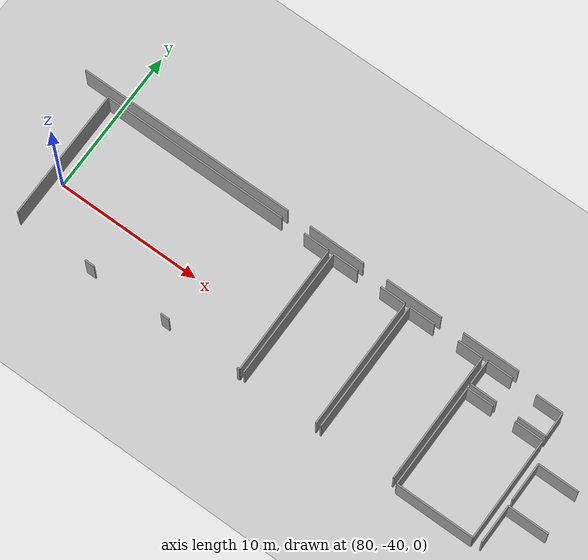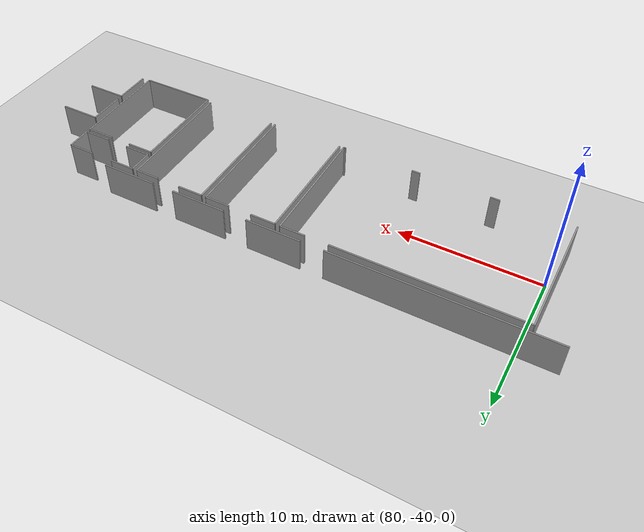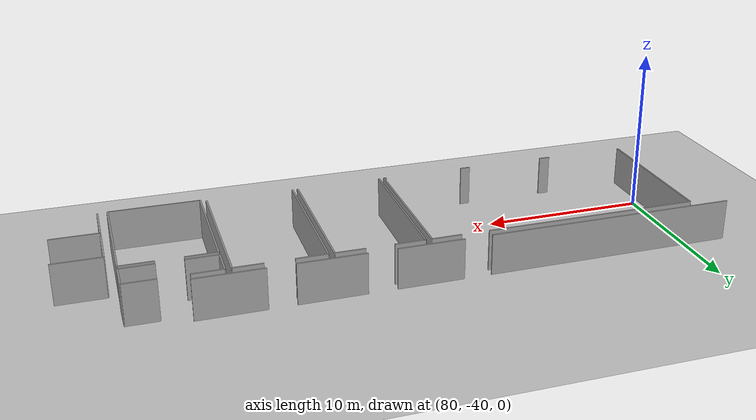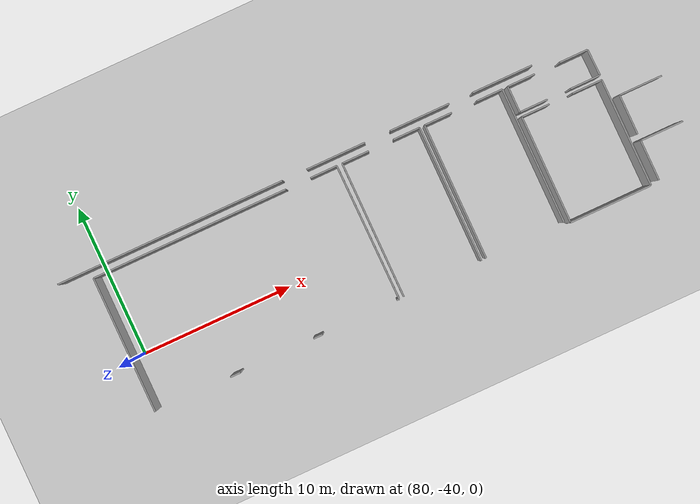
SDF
<sdf version="1.6">
 <world name="default">
  <model name="ground_plane">
   <static>1</static>
   <link name="link">
    <collision name="collision">
     <geometry><plane><normal>0 0 1</normal><size>100 100</size></plane></geometry>
     <surface><friction><ode><mu>100</mu><mu2>50</mu2></ode></friction></surface>
    </collision>
    <visual name="visual">
     <cast_shadows>0</cast_shadows>
     <geometry><plane><normal>0 0 1</normal><size>100 100</size></plane></geometry>
     <material>
      <script><uri>file://media/materials/scripts/gazebo.material</uri><name>Gazebo/Grey</name></script>
     </material>
    </visual>
   </link>
  </model>
  <model name="50015849">
   <static>1</static>
   <link name="Wall_60">
    <collision name="Wall_60_Collision">
     <geometry><box><size>3.99575784133 0.1 2.5</size></box></geometry>
     <pose>1.99787892066 0 1.25 0 0 0</pose>
    </collision>
    <visual name="Wall_60_Visual">
     <pose>1.99787892066 0 1.25 0 0 0</pose>
     <geometry><box><size>3.99575784133 0.1 2.5</size></box></geometry>
     <material>
      <script><uri>file://media/materials/scripts/gazebo.material</uri><name>Gazebo/Grey</name></script>
      <ambient>1 1 1 1</ambient>
     </material>
    </visual>
    <pose>235.332863394 -77.6431887316 0 0 0 3.14159265359</pose>
   </link>
   <link name="Wall_61">
    <collision name="Wall_61_Collision">
     <geometry><box><size>3.98051655267 0.1 2.5</size></box></geometry>
     <pose>1.99025827634 0 1.25 0 0 0</pose>
    </collision>
    <visual name="Wall_61_Visual">
     <pose>1.99025827634 0 1.25 0 0 0</pose>
     <geometry><box><size>3.98051655267 0.1 2.5</size></box></geometry>
     <material>
      <script><uri>file://media/materials/scripts/gazebo.material</uri><name>Gazebo/Grey</name></script>
      <ambient>1 1 1 1</ambient>
     </material>
    </visual>
    <pose>229.754551747 -77.6431887316 0 0 0 3.14159265359</pose>
   </link>
   <link name="Wall_62">
    <collision name="Wall_62_Collision">
     <geometry><box><size>3.93987311627 0.1 2.5</size></box></geometry>
     <pose>1.96993655814 0 1.25 0 0 0</pose>
    </collision>
    <visual name="Wall_62_Visual">
     <pose>1.96993655814 0 1.25 0 0 0</pose>
     <geometry><box><size>3.93987311627 0.1 2.5</size></box></geometry>
     <material>
      <script><uri>file://media/materials/scripts/gazebo.material</uri><name>Gazebo/Grey</name></script>
      <ambient>1 1 1 1</ambient>
     </material>
    </visual>
    <pose>224.082252154 -77.6431887316 0 0 0 3.14159265359</pose>
   </link>
   <link name="Wall_63">
    <collision name="Wall_63_Collision">
     <geometry><box><size>15.1480627687 0.1 2.5</size></box></geometry>
     <pose>7.57403138435 0 1.25 0 0 0</pose>
    </collision>
    <visual name="Wall_63_Visual">
     <pose>7.57403138435 0 1.25 0 0 0</pose>
     <geometry><box><size>15.1480627687 0.1 2.5</size></box></geometry>
     <material>
      <script><uri>file://media/materials/scripts/gazebo.material</uri><name>Gazebo/Grey</name></script>
      <ambient>1 1 1 1</ambient>
     </material>
    </visual>
    <pose>218.506480723 -77.6431887316 0 0 0 3.14159265359</pose>
   </link>
   <link name="Wall_206">
    <collision name="Wall_206_Collision">
     <geometry><box><size>0.165113960385 0.1 2.5</size></box></geometry>
     <pose>0.0825569801927 0 1.25 0 0 0</pose>
    </collision>
    <visual name="Wall_206_Visual">
     <pose>0.0825569801927 0 1.25 0 0 0</pose>
     <geometry><box><size>0.165113960385 0.1 2.5</size></box></geometry>
     <material>
      <script><uri>file://media/materials/scripts/gazebo.material</uri><name>Gazebo/Grey</name></script>
      <ambient>1 1 1 1</ambient>
     </material>
    </visual>
    <pose>221.963713032 -87.219798434 0 0 0 3.14159265359</pose>
   </link>
   <link name="Wall_207">
    <collision name="Wall_207_Collision">
     <geometry><box><size>0.602030901713 0.1 2.5</size></box></geometry>
     <pose>0.301015450856 0 1.25 0 0 0</pose>
    </collision>
    <visual name="Wall_207_Visual">
     <pose>0.301015450856 0 1.25 0 0 0</pose>
     <geometry><box><size>0.602030901713 0.1 2.5</size></box></geometry>
     <material>
      <script><uri>file://media/materials/scripts/gazebo.material</uri><name>Gazebo/Grey</name></script>
      <ambient>1 1 1 1</ambient>
     </material>
    </visual>
    <pose>216.794375964 -87.219798434 0 0 0 3.14159265359</pose>
   </link>
   <link name="Wall_208">
    <collision name="Wall_208_Collision">
     <geometry><box><size>0.668076485867 0.1 2.5</size></box></geometry>
     <pose>0.334038242933 0 1.25 0 0 0</pose>
    </collision>
    <visual name="Wall_208_Visual">
     <pose>0.334038242933 0 1.25 0 0 0</pose>
     <geometry><box><size>0.668076485867 0.1 2.5</size></box></geometry>
     <material>
      <script><uri>file://media/materials/scripts/gazebo.material</uri><name>Gazebo/Grey</name></script>
      <ambient>1 1 1 1</ambient>
     </material>
    </visual>
    <pose>211.246546896 -87.219798434 0 0 0 3.14159265359</pose>
   </link>
   <link name="Wall_209">
    <collision name="Wall_209_Collision">
     <geometry><box><size>9.00912572158 0.1 2.5</size></box></geometry>
     <pose>4.50456286079 0 1.25 0 0 0</pose>
    </collision>
    <visual name="Wall_209_Visual">
     <pose>4.50456286079 0 1.25 0 0 0</pose>
     <geometry><box><size>9.00912572158 0.1 2.5</size></box></geometry>
     <material>
      <script><uri>file://media/materials/scripts/gazebo.material</uri><name>Gazebo/Grey</name></script>
      <ambient>1 1 1 1</ambient>
     </material>
    </visual>
    <pose>205.50667759 -87.219798434 0 0 0 1.57079632679</pose>
   </link>
   <link name="Wall_210">
    <collision name="Wall_210_Collision">
     <geometry><box><size>12.9693205561 0.1 2.5</size></box></geometry>
     <pose>6.48466027803 0 1.25 0 0 0</pose>
    </collision>
    <visual name="Wall_210_Visual">
     <pose>6.48466027803 0 1.25 0 0 0</pose>
     <geometry><box><size>12.9693205561 0.1 2.5</size></box></geometry>
     <material>
      <script><uri>file://media/materials/scripts/gazebo.material</uri><name>Gazebo/Grey</name></script>
      <ambient>1 1 1 1</ambient>
     </material>
    </visual>
    <pose>205.50667759 -78.2106727124 0 0 0 0.0</pose>
   </link>
   <link name="Wall_211">
    <collision name="Wall_211_Collision">
     <geometry><box><size>1.78069055739 0.1 2.5</size></box></geometry>
     <pose>0.890345278693 0 1.25 0 0 0</pose>
    </collision>
    <visual name="Wall_211_Visual">
     <pose>0.890345278693 0 1.25 0 0 0</pose>
     <geometry><box><size>1.78069055739 0.1 2.5</size></box></geometry>
     <material>
      <script><uri>file://media/materials/scripts/gazebo.material</uri><name>Gazebo/Grey</name></script>
      <ambient>1 1 1 1</ambient>
     </material>
    </visual>
    <pose>220.129677964 -78.2106727124 0 0 0 0.0</pose>
   </link>
   <link name="Wall_212">
    <collision name="Wall_212_Collision">
     <geometry><box><size>9.00928365099 0.1 2.5</size></box></geometry>
     <pose>4.5046418255 0 1.25 0 0 0</pose>
    </collision>
    <visual name="Wall_212_Visual">
     <pose>4.5046418255 0 1.25 0 0 0</pose>
     <geometry><box><size>9.00928365099 0.1 2.5</size></box></geometry>
     <material>
      <script><uri>file://media/materials/scripts/gazebo.material</uri><name>Gazebo/Grey</name></script>
      <ambient>1 1 1 1</ambient>
     </material>
    </visual>
    <pose>221.910368522 -78.2106727124 0 0 0 -1.56487523206</pose>
   </link>
   <link name="Wall_213">
    <collision name="Wall_213_Collision">
     <geometry><box><size>8.98905802486 0.1 2.5</size></box></geometry>
     <pose>4.49452901243 0 1.25 0 0 0</pose>
    </collision>
    <visual name="Wall_213_Visual">
     <pose>4.49452901243 0 1.25 0 0 0</pose>
     <geometry><box><size>8.98905802486 0.1 2.5</size></box></geometry>
     <material>
      <script><uri>file://media/materials/scripts/gazebo.material</uri><name>Gazebo/Grey</name></script>
      <ambient>1 1 1 1</ambient>
     </material>
    </visual>
    <pose>222.276159449 -87.2032870379 0 0 0 1.57079632679</pose>
   </link>
   <link name="Wall_214">
    <collision name="Wall_214_Collision">
     <geometry><box><size>1.79085141649 0.1 2.5</size></box></geometry>
     <pose>0.895425708244 0 1.25 0 0 0</pose>
    </collision>
    <visual name="Wall_214_Visual">
     <pose>0.895425708244 0 1.25 0 0 0</pose>
     <geometry><box><size>1.79085141649 0.1 2.5</size></box></geometry>
     <material>
      <script><uri>file://media/materials/scripts/gazebo.material</uri><name>Gazebo/Grey</name></script>
      <ambient>1 1 1 1</ambient>
     </material>
    </visual>
    <pose>222.276159449 -78.2142290131 0 0 0 0.0</pose>
   </link>
   <link name="Wall_215">
    <collision name="Wall_215_Collision">
     <geometry><box><size>1.76290905396 0.1 2.5</size></box></geometry>
     <pose>0.88145452698 0 1.25 0 0 0</pose>
    </collision>
    <visual name="Wall_215_Visual">
     <pose>0.88145452698 0 1.25 0 0 0</pose>
     <geometry><box><size>1.76290905396 0.1 2.5</size></box></geometry>
     <material>
      <script><uri>file://media/materials/scripts/gazebo.material</uri><name>Gazebo/Grey</name></script>
      <ambient>1 1 1 1</ambient>
     </material>
    </visual>
    <pose>225.735931973 -78.2142290131 0 0 0 0.0</pose>
   </link>
   <link name="Wall_216">
    <collision name="Wall_216_Collision">
     <geometry><box><size>8.98906376756 0.1 2.5</size></box></geometry>
     <pose>4.49453188378 0 1.25 0 0 0</pose>
    </collision>
    <visual name="Wall_216_Visual">
     <pose>4.49453188378 0 1.25 0 0 0</pose>
     <geometry><box><size>8.98906376756 0.1 2.5</size></box></geometry>
     <material>
      <script><uri>file://media/materials/scripts/gazebo.material</uri><name>Gazebo/Grey</name></script>
      <ambient>1 1 1 1</ambient>
     </material>
    </visual>
    <pose>227.498841027 -78.2142290131 0 0 0 -1.56966596867</pose>
   </link>
   <link name="Wall_217">
    <collision name="Wall_217_Collision">
     <geometry><box><size>8.97965923019 0.1 2.5</size></box></geometry>
     <pose>4.48982961509 0 1.25 0 0 0</pose>
    </collision>
    <visual name="Wall_217_Visual">
     <pose>4.48982961509 0 1.25 0 0 0</pose>
     <geometry><box><size>8.97965923019 0.1 2.5</size></box></geometry>
     <material>
      <script><uri>file://media/materials/scripts/gazebo.material</uri><name>Gazebo/Grey</name></script>
      <ambient>1 1 1 1</ambient>
     </material>
    </visual>
    <pose>227.844310236 -87.1921100929 0 0 0 1.57079632679</pose>
   </link>
   <link name="Wall_218">
    <collision name="Wall_218_Collision">
     <geometry><box><size>1.82133399379 0.1 2.5</size></box></geometry>
     <pose>0.910666996895 0 1.25 0 0 0</pose>
    </collision>
    <visual name="Wall_218_Visual">
     <pose>0.910666996895 0 1.25 0 0 0</pose>
     <geometry><box><size>1.82133399379 0.1 2.5</size></box></geometry>
     <material>
      <script><uri>file://media/materials/scripts/gazebo.material</uri><name>Gazebo/Grey</name></script>
      <ambient>1 1 1 1</ambient>
     </material>
    </visual>
    <pose>227.844310236 -78.2124508627 0 0 0 0.0</pose>
   </link>
   <link name="Wall_219">
    <collision name="Wall_219_Collision">
     <geometry><box><size>1.72734604711 0.1 2.5</size></box></geometry>
     <pose>0.863673023554 0 1.25 0 0 0</pose>
    </collision>
    <visual name="Wall_219_Visual">
     <pose>0.863673023554 0 1.25 0 0 0</pose>
     <geometry><box><size>1.72734604711 0.1 2.5</size></box></geometry>
     <material>
      <script><uri>file://media/materials/scripts/gazebo.material</uri><name>Gazebo/Grey</name></script>
      <ambient>1 1 1 1</ambient>
     </material>
    </visual>
    <pose>231.36758813 -78.2124508627 0 0 0 0.0</pose>
   </link>
   <link name="Wall_220">
    <collision name="Wall_220_Collision">
     <geometry><box><size>8.97966066737 0.1 2.5</size></box></geometry>
     <pose>4.48983033368 0 1.25 0 0 0</pose>
    </collision>
    <visual name="Wall_220_Visual">
     <pose>4.48983033368 0 1.25 0 0 0</pose>
     <geometry><box><size>8.97966066737 0.1 2.5</size></box></geometry>
     <material>
      <script><uri>file://media/materials/scripts/gazebo.material</uri><name>Gazebo/Grey</name></script>
      <ambient>1 1 1 1</ambient>
     </material>
    </visual>
    <pose>233.094934177 -78.2124508627 0 0 0 -1.57023055599</pose>
   </link>
   <link name="Wall_221">
    <collision name="Wall_221_Collision">
     <geometry><box><size>1.98644795417 0.1 2.5</size></box></geometry>
     <pose>0.993223977087 0 1.25 0 0 0</pose>
    </collision>
    <visual name="Wall_221_Visual">
     <pose>0.993223977087 0 1.25 0 0 0</pose>
     <geometry><box><size>1.98644795417 0.1 2.5</size></box></geometry>
     <material>
      <script><uri>file://media/materials/scripts/gazebo.material</uri><name>Gazebo/Grey</name></script>
      <ambient>1 1 1 1</ambient>
     </material>
    </visual>
    <pose>238.866302146 -79.937764738 0 0 0 3.14159265359</pose>
   </link>
   <link name="Wall_222">
    <collision name="Wall_222_Collision">
     <geometry><box><size>1.88229914839 0.1 2.5</size></box></geometry>
     <pose>0.941149574196 0 1.25 0 0 0</pose>
    </collision>
    <visual name="Wall_222_Visual">
     <pose>0.941149574196 0 1.25 0 0 0</pose>
     <geometry><box><size>1.88229914839 0.1 2.5</size></box></geometry>
     <material>
      <script><uri>file://media/materials/scripts/gazebo.material</uri><name>Gazebo/Grey</name></script>
      <ambient>1 1 1 1</ambient>
     </material>
    </visual>
    <pose>235.340484038 -79.937764738 0 0 0 3.14159265359</pose>
   </link>
   <link name="Wall_223">
    <collision name="Wall_223_Collision">
     <geometry><box><size>1.73928505655 0.1 2.5</size></box></geometry>
     <pose>0.869642528276 0 1.25 0 0 0</pose>
    </collision>
    <visual name="Wall_223_Visual">
     <pose>0.869642528276 0 1.25 0 0 0</pose>
     <geometry><box><size>1.73928505655 0.1 2.5</size></box></geometry>
     <material>
      <script><uri>file://media/materials/scripts/gazebo.material</uri><name>Gazebo/Grey</name></script>
      <ambient>1 1 1 1</ambient>
     </material>
    </visual>
    <pose>233.45818489 -79.937764738 0 0 0 1.57079632679</pose>
   </link>
   <link name="Wall_224">
    <collision name="Wall_224_Collision">
     <geometry><box><size>1.80609270514 0.1 2.5</size></box></geometry>
     <pose>0.903046352569 0 1.25 0 0 0</pose>
    </collision>
    <visual name="Wall_224_Visual">
     <pose>0.903046352569 0 1.25 0 0 0</pose>
     <geometry><box><size>1.80609270514 0.1 2.5</size></box></geometry>
     <material>
      <script><uri>file://media/materials/scripts/gazebo.material</uri><name>Gazebo/Grey</name></script>
      <ambient>1 1 1 1</ambient>
     </material>
    </visual>
    <pose>233.45818489 -78.1984796815 0 0 0 0.0</pose>
   </link>
   <link name="Wall_225">
    <collision name="Wall_225_Collision">
     <geometry><box><size>1.86959807452 0.1 2.5</size></box></geometry>
     <pose>0.934799037259 0 1.25 0 0 0</pose>
    </collision>
    <visual name="Wall_225_Visual">
     <pose>0.934799037259 0 1.25 0 0 0</pose>
     <geometry><box><size>1.86959807452 0.1 2.5</size></box></geometry>
     <material>
      <script><uri>file://media/materials/scripts/gazebo.material</uri><name>Gazebo/Grey</name></script>
      <ambient>1 1 1 1</ambient>
     </material>
    </visual>
    <pose>236.963681279 -78.1984796815 0 0 0 0.0</pose>
   </link>
   <link name="Wall_226">
    <collision name="Wall_226_Collision">
     <geometry><box><size>1.73959852056 0.1 2.5</size></box></geometry>
     <pose>0.869799260281 0 1.25 0 0 0</pose>
    </collision>
    <visual name="Wall_226_Visual">
     <pose>0.869799260281 0 1.25 0 0 0</pose>
     <geometry><box><size>1.73959852056 0.1 2.5</size></box></geometry>
     <material>
      <script><uri>file://media/materials/scripts/gazebo.material</uri><name>Gazebo/Grey</name></script>
      <ambient>1 1 1 1</ambient>
     </material>
    </visual>
    <pose>238.833279354 -78.1984796815 0 0 0 -1.55181219033</pose>
   </link>
   <link name="Wall_227">
    <collision name="Wall_227_Collision">
     <geometry><box><size>5.41827811541 0.1 2.5</size></box></geometry>
     <pose>2.70913905771 0 1.25 0 0 0</pose>
    </collision>
    <visual name="Wall_227_Visual">
     <pose>2.70913905771 0 1.25 0 0 0</pose>
     <geometry><box><size>5.41827811541 0.1 2.5</size></box></geometry>
     <material>
      <script><uri>file://media/materials/scripts/gazebo.material</uri><name>Gazebo/Grey</name></script>
      <ambient>1 1 1 1</ambient>
     </material>
    </visual>
    <pose>238.876463005 -87.3694170842 0 0 0 3.14159265359</pose>
   </link>
   <link name="Wall_228">
    <collision name="Wall_228_Collision">
     <geometry><box><size>7.12352429398 0.1 2.5</size></box></geometry>
     <pose>3.56176214699 0 1.25 0 0 0</pose>
    </collision>
    <visual name="Wall_228_Visual">
     <pose>3.56176214699 0 1.25 0 0 0</pose>
     <geometry><box><size>7.12352429398 0.1 2.5</size></box></geometry>
     <material>
      <script><uri>file://media/materials/scripts/gazebo.material</uri><name>Gazebo/Grey</name></script>
      <ambient>1 1 1 1</ambient>
     </material>
    </visual>
    <pose>233.45818489 -87.3694170842 0 0 0 1.57079632679</pose>
   </link>
   <link name="Wall_229">
    <collision name="Wall_229_Collision">
     <geometry><box><size>1.86451764497 0.1 2.5</size></box></geometry>
     <pose>0.932258822483 0 1.25 0 0 0</pose>
    </collision>
    <visual name="Wall_229_Visual">
     <pose>0.932258822483 0 1.25 0 0 0</pose>
     <geometry><box><size>1.86451764497 0.1 2.5</size></box></geometry>
     <material>
      <script><uri>file://media/materials/scripts/gazebo.material</uri><name>Gazebo/Grey</name></script>
      <ambient>1 1 1 1</ambient>
     </material>
    </visual>
    <pose>233.45818489 -80.2458927902 0 0 0 0.0</pose>
   </link>
   <link name="Wall_230">
    <collision name="Wall_230_Collision">
     <geometry><box><size>1.97120666552 0.1 2.5</size></box></geometry>
     <pose>0.985603332762 0 1.25 0 0 0</pose>
    </collision>
    <visual name="Wall_230_Visual">
     <pose>0.985603332762 0 1.25 0 0 0</pose>
     <geometry><box><size>1.97120666552 0.1 2.5</size></box></geometry>
     <material>
      <script><uri>file://media/materials/scripts/gazebo.material</uri><name>Gazebo/Grey</name></script>
      <ambient>1 1 1 1</ambient>
     </material>
    </visual>
    <pose>236.874773762 -80.2458927902 0 0 0 0.0</pose>
   </link>
   <link name="Wall_231">
    <collision name="Wall_231_Collision">
     <geometry><box><size>7.12358951333 0.1 2.5</size></box></geometry>
     <pose>3.56179475667 0 1.25 0 0 0</pose>
    </collision>
    <visual name="Wall_231_Visual">
     <pose>3.56179475667 0 1.25 0 0 0</pose>
     <geometry><box><size>7.12358951333 0.1 2.5</size></box></geometry>
     <material>
      <script><uri>file://media/materials/scripts/gazebo.material</uri><name>Gazebo/Grey</name></script>
      <ambient>1 1 1 1</ambient>
     </material>
    </visual>
    <pose>238.845980428 -80.2458927902 0 0 0 -1.56651721017</pose>
   </link>
   <link name="Wall_257">
    <collision name="Wall_257_Collision">
     <geometry><box><size>2.63572685071 0.1 2.5</size></box></geometry>
     <pose>1.31786342535 0 1.25 0 0 0</pose>
    </collision>
    <visual name="Wall_257_Visual">
     <pose>1.31786342535 0 1.25 0 0 0</pose>
     <geometry><box><size>2.63572685071 0.1 2.5</size></box></geometry>
     <material>
      <script><uri>file://media/materials/scripts/gazebo.material</uri><name>Gazebo/Grey</name></script>
      <ambient>1 1 1 1</ambient>
     </material>
    </visual>
    <pose>239.445471115 -84.186019928 0 0 0 1.57079632679</pose>
   </link>
   <link name="Wall_258">
    <collision name="Wall_258_Collision">
     <geometry><box><size>2.84758076295 0.1 2.5</size></box></geometry>
     <pose>1.42379038148 0 1.25 0 0 0</pose>
    </collision>
    <visual name="Wall_258_Visual">
     <pose>1.42379038148 0 1.25 0 0 0</pose>
     <geometry><box><size>2.84758076295 0.1 2.5</size></box></geometry>
     <material>
      <script><uri>file://media/materials/scripts/gazebo.material</uri><name>Gazebo/Grey</name></script>
      <ambient>1 1 1 1</ambient>
     </material>
    </visual>
    <pose>239.445471115 -81.5502930773 0 0 0 0.0</pose>
   </link>
   <link name="Wall_262">
    <collision name="Wall_262_Collision">
     <geometry><box><size>2.65985889107 0.1 2.5</size></box></geometry>
     <pose>1.32992944553 0 1.25 0 0 0</pose>
    </collision>
    <visual name="Wall_262_Visual">
     <pose>1.32992944553 0 1.25 0 0 0</pose>
     <geometry><box><size>2.65985889107 0.1 2.5</size></box></geometry>
     <material>
      <script><uri>file://media/materials/scripts/gazebo.material</uri><name>Gazebo/Grey</name></script>
      <ambient>1 1 1 1</ambient>
     </material>
    </visual>
    <pose>239.455631974 -87.2800015241 0 0 0 1.57079632679</pose>
   </link>
   <link name="Wall_263">
    <collision name="Wall_263_Collision">
     <geometry><box><size>2.8425003334 0.1 2.5</size></box></geometry>
     <pose>1.4212501667 0 1.25 0 0 0</pose>
    </collision>
    <visual name="Wall_263_Visual">
     <pose>1.4212501667 0 1.25 0 0 0</pose>
     <geometry><box><size>2.8425003334 0.1 2.5</size></box></geometry>
     <material>
      <script><uri>file://media/materials/scripts/gazebo.material</uri><name>Gazebo/Grey</name></script>
      <ambient>1 1 1 1</ambient>
     </material>
    </visual>
    <pose>239.455631974 -84.6201426331 0 0 0 0.0</pose>
   </link>
   <pose>-126.05 43.7425752697 0 0 0 0</pose>
  </model>
 </world>
</sdf>
